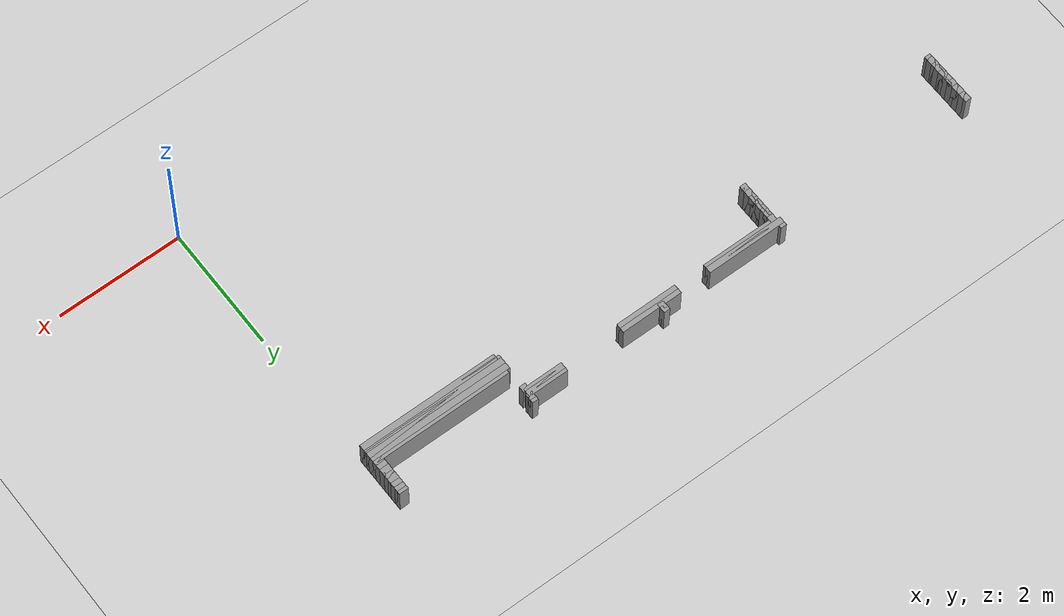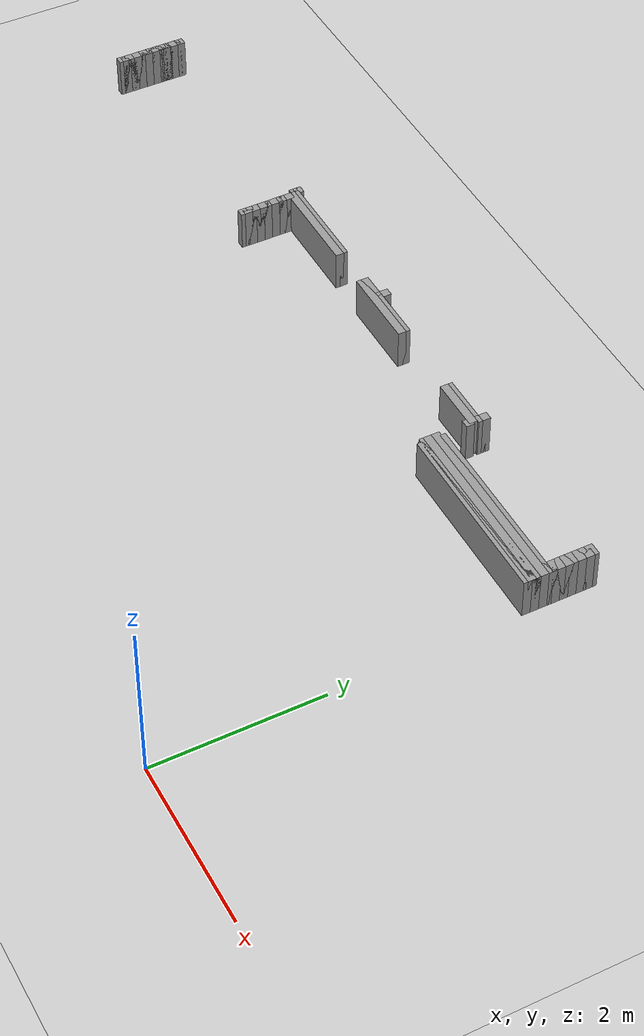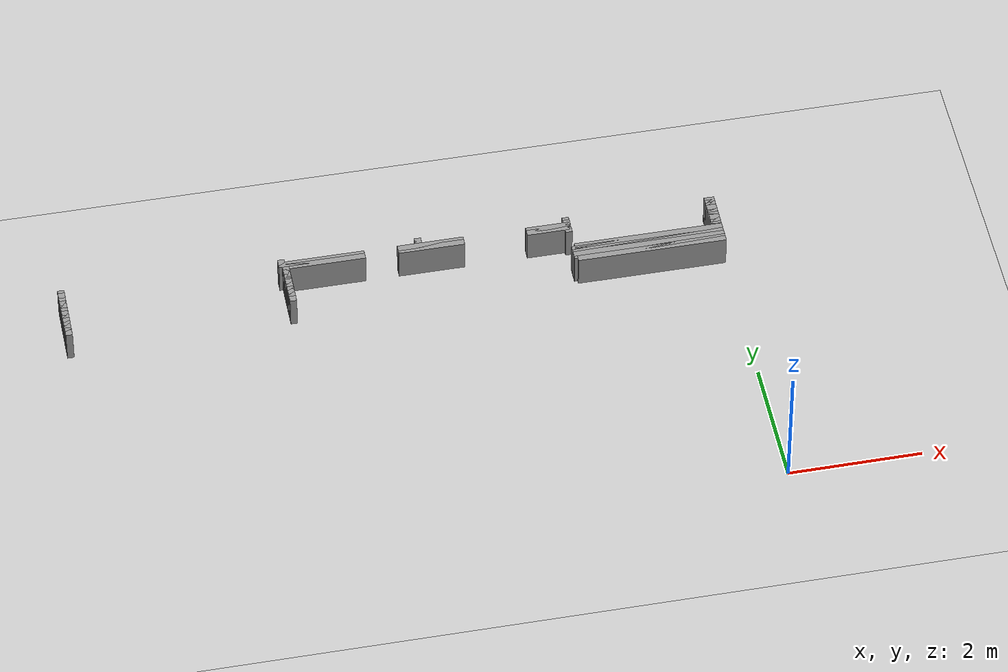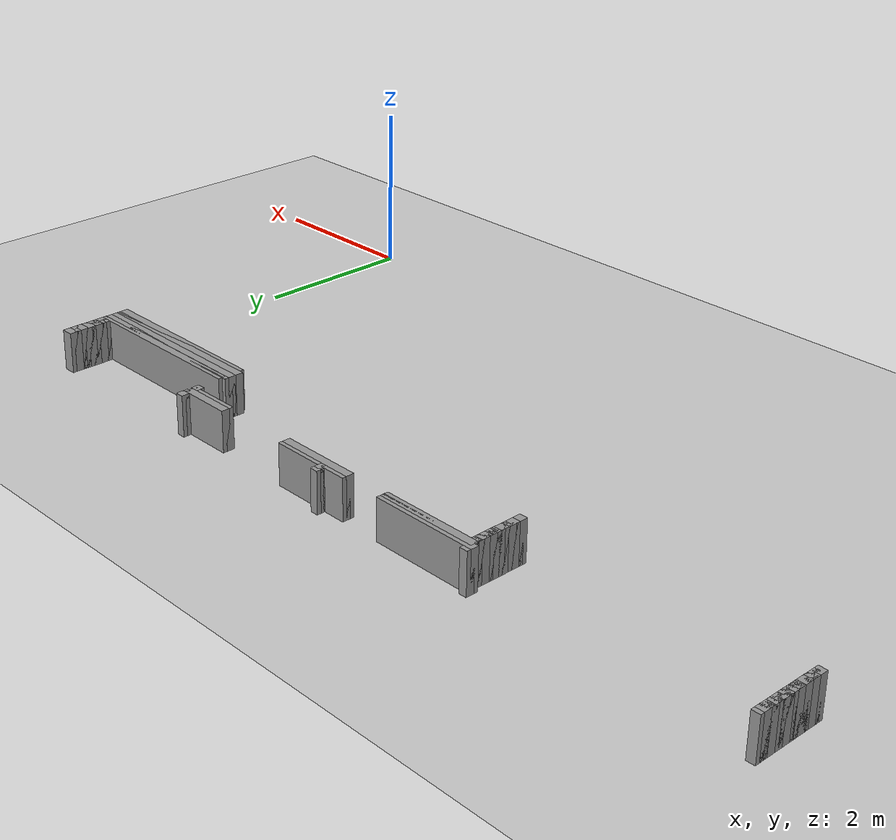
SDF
<sdf version="1.6">
 <world name="GridMap">
  <include><uri>model://sun</uri></include>
  <include><uri>model://ground_plane</uri></include>
  <model name="GridMap">
   <link name="Wall_(198.0,85.0)">
    <collision name="Wall_(198.0,85.0)_Collision">
     <geometry><box><size>0.1 0.1 0.5</size></box></geometry>
     <pose>-9.9 4.25 0.25 0 -0 0</pose>
    </collision>
    <inertial>
     <mass>0.5</mass>
     <pose>0 0.01 0 0 0 0</pose>
     <inertia><ixx>0.004</ixx><ixy>0.001</ixy><ixz>0</ixz><iyy>0.006</iyy><iyz>0</iyz><izz>0.007</izz></inertia>
    </inertial>
    <visual name="Wall_(198.0,85.0)_Visual">
     <geometry><box><size>0.1 0.1 0.5</size></box></geometry>
     <pose>-9.9 4.25 0.25 0 -0 0</pose>
     <material>
      <script><uri>file://media/materials/scripts/gazebo.material</uri><name>Gazebo/Grey</name></script>
      <ambient>1 1 1 1</ambient>
     </material>
     <meta><layer>0</layer></meta>
    </visual>
   </link>
   <link name="Wall_(22.5,86.0)">
    <collision name="Wall_(22.5,86.0)_Collision">
     <geometry><box><size>2.25 0.1 0.5</size></box></geometry>
     <pose>-1.125 4.3 0.25 0 -0 0</pose>
    </collision>
    <inertial>
     <mass>0.5</mass>
     <pose>0 0.01 0 0 0 0</pose>
     <inertia><ixx>0.004</ixx><ixy>0.001</ixy><ixz>0</ixz><iyy>0.006</iyy><iyz>0</iyz><izz>0.007</izz></inertia>
    </inertial>
    <visual name="Wall_(22.5,86.0)_Visual">
     <geometry><box><size>2.25 0.1 0.5</size></box></geometry>
     <pose>-1.125 4.3 0.25 0 -0 0</pose>
     <material>
      <script><uri>file://media/materials/scripts/gazebo.material</uri><name>Gazebo/Grey</name></script>
      <ambient>1 1 1 1</ambient>
     </material>
     <meta><layer>0</layer></meta>
    </visual>
   </link>
   <link name="Wall_(131.0,86.0)">
    <collision name="Wall_(131.0,86.0)_Collision">
     <geometry><box><size>0.1 0.1 0.5</size></box></geometry>
     <pose>-6.550000000000001 4.3 0.25 0 -0 0</pose>
    </collision>
    <inertial>
     <mass>0.5</mass>
     <pose>0 0.01 0 0 0 0</pose>
     <inertia><ixx>0.004</ixx><ixy>0.001</ixy><ixz>0</ixz><iyy>0.006</iyy><iyz>0</iyz><izz>0.007</izz></inertia>
    </inertial>
    <visual name="Wall_(131.0,86.0)_Visual">
     <geometry><box><size>0.1 0.1 0.5</size></box></geometry>
     <pose>-6.550000000000001 4.3 0.25 0 -0 0</pose>
     <material>
      <script><uri>file://media/materials/scripts/gazebo.material</uri><name>Gazebo/Grey</name></script>
      <ambient>1 1 1 1</ambient>
     </material>
     <meta><layer>0</layer></meta>
    </visual>
   </link>
   <link name="Wall_(198.0,86.0)">
    <collision name="Wall_(198.0,86.0)_Collision">
     <geometry><box><size>0.1 0.1 0.5</size></box></geometry>
     <pose>-9.9 4.3 0.25 0 -0 0</pose>
    </collision>
    <inertial>
     <mass>0.5</mass>
     <pose>0 0.01 0 0 0 0</pose>
     <inertia><ixx>0.004</ixx><ixy>0.001</ixy><ixz>0</ixz><iyy>0.006</iyy><iyz>0</iyz><izz>0.007</izz></inertia>
    </inertial>
    <visual name="Wall_(198.0,86.0)_Visual">
     <geometry><box><size>0.1 0.1 0.5</size></box></geometry>
     <pose>-9.9 4.3 0.25 0 -0 0</pose>
     <material>
      <script><uri>file://media/materials/scripts/gazebo.material</uri><name>Gazebo/Grey</name></script>
      <ambient>1 1 1 1</ambient>
     </material>
     <meta><layer>0</layer></meta>
    </visual>
   </link>
   <link name="Wall_(23.0,87.0)">
    <collision name="Wall_(23.0,87.0)_Collision">
     <geometry><box><size>2.3000000000000003 0.1 0.5</size></box></geometry>
     <pose>-1.1500000000000001 4.3500000000000005 0.25 0 -0 0</pose>
    </collision>
    <inertial>
     <mass>0.5</mass>
     <pose>0 0.01 0 0 0 0</pose>
     <inertia><ixx>0.004</ixx><ixy>0.001</ixy><ixz>0</ixz><iyy>0.006</iyy><iyz>0</iyz><izz>0.007</izz></inertia>
    </inertial>
    <visual name="Wall_(23.0,87.0)_Visual">
     <geometry><box><size>2.3000000000000003 0.1 0.5</size></box></geometry>
     <pose>-1.1500000000000001 4.3500000000000005 0.25 0 -0 0</pose>
     <material>
      <script><uri>file://media/materials/scripts/gazebo.material</uri><name>Gazebo/Grey</name></script>
      <ambient>1 1 1 1</ambient>
     </material>
     <meta><layer>0</layer></meta>
    </visual>
   </link>
   <link name="Wall_(131.0,87.0)">
    <collision name="Wall_(131.0,87.0)_Collision">
     <geometry><box><size>0.1 0.1 0.5</size></box></geometry>
     <pose>-6.550000000000001 4.3500000000000005 0.25 0 -0 0</pose>
    </collision>
    <inertial>
     <mass>0.5</mass>
     <pose>0 0.01 0 0 0 0</pose>
     <inertia><ixx>0.004</ixx><ixy>0.001</ixy><ixz>0</ixz><iyy>0.006</iyy><iyz>0</iyz><izz>0.007</izz></inertia>
    </inertial>
    <visual name="Wall_(131.0,87.0)_Visual">
     <geometry><box><size>0.1 0.1 0.5</size></box></geometry>
     <pose>-6.550000000000001 4.3500000000000005 0.25 0 -0 0</pose>
     <material>
      <script><uri>file://media/materials/scripts/gazebo.material</uri><name>Gazebo/Grey</name></script>
      <ambient>1 1 1 1</ambient>
     </material>
     <meta><layer>0</layer></meta>
    </visual>
   </link>
   <link name="Wall_(198.0,87.0)">
    <collision name="Wall_(198.0,87.0)_Collision">
     <geometry><box><size>0.1 0.1 0.5</size></box></geometry>
     <pose>-9.9 4.3500000000000005 0.25 0 -0 0</pose>
    </collision>
    <inertial>
     <mass>0.5</mass>
     <pose>0 0.01 0 0 0 0</pose>
     <inertia><ixx>0.004</ixx><ixy>0.001</ixy><ixz>0</ixz><iyy>0.006</iyy><iyz>0</iyz><izz>0.007</izz></inertia>
    </inertial>
    <visual name="Wall_(198.0,87.0)_Visual">
     <geometry><box><size>0.1 0.1 0.5</size></box></geometry>
     <pose>-9.9 4.3500000000000005 0.25 0 -0 0</pose>
     <material>
      <script><uri>file://media/materials/scripts/gazebo.material</uri><name>Gazebo/Grey</name></script>
      <ambient>1 1 1 1</ambient>
     </material>
     <meta><layer>0</layer></meta>
    </visual>
   </link>
   <link name="Wall_(23.0,88.0)">
    <collision name="Wall_(23.0,88.0)_Collision">
     <geometry><box><size>2.3000000000000003 0.1 0.5</size></box></geometry>
     <pose>-1.1500000000000001 4.4 0.25 0 -0 0</pose>
    </collision>
    <inertial>
     <mass>0.5</mass>
     <pose>0 0.01 0 0 0 0</pose>
     <inertia><ixx>0.004</ixx><ixy>0.001</ixy><ixz>0</ixz><iyy>0.006</iyy><iyz>0</iyz><izz>0.007</izz></inertia>
    </inertial>
    <visual name="Wall_(23.0,88.0)_Visual">
     <geometry><box><size>2.3000000000000003 0.1 0.5</size></box></geometry>
     <pose>-1.1500000000000001 4.4 0.25 0 -0 0</pose>
     <material>
      <script><uri>file://media/materials/scripts/gazebo.material</uri><name>Gazebo/Grey</name></script>
      <ambient>1 1 1 1</ambient>
     </material>
     <meta><layer>0</layer></meta>
    </visual>
   </link>
   <link name="Wall_(131.0,88.0)">
    <collision name="Wall_(131.0,88.0)_Collision">
     <geometry><box><size>0.1 0.1 0.5</size></box></geometry>
     <pose>-6.550000000000001 4.4 0.25 0 -0 0</pose>
    </collision>
    <inertial>
     <mass>0.5</mass>
     <pose>0 0.01 0 0 0 0</pose>
     <inertia><ixx>0.004</ixx><ixy>0.001</ixy><ixz>0</ixz><iyy>0.006</iyy><iyz>0</iyz><izz>0.007</izz></inertia>
    </inertial>
    <visual name="Wall_(131.0,88.0)_Visual">
     <geometry><box><size>0.1 0.1 0.5</size></box></geometry>
     <pose>-6.550000000000001 4.4 0.25 0 -0 0</pose>
     <material>
      <script><uri>file://media/materials/scripts/gazebo.material</uri><name>Gazebo/Grey</name></script>
      <ambient>1 1 1 1</ambient>
     </material>
     <meta><layer>0</layer></meta>
    </visual>
   </link>
   <link name="Wall_(198.0,88.0)">
    <collision name="Wall_(198.0,88.0)_Collision">
     <geometry><box><size>0.1 0.1 0.5</size></box></geometry>
     <pose>-9.9 4.4 0.25 0 -0 0</pose>
    </collision>
    <inertial>
     <mass>0.5</mass>
     <pose>0 0.01 0 0 0 0</pose>
     <inertia><ixx>0.004</ixx><ixy>0.001</ixy><ixz>0</ixz><iyy>0.006</iyy><iyz>0</iyz><izz>0.007</izz></inertia>
    </inertial>
    <visual name="Wall_(198.0,88.0)_Visual">
     <geometry><box><size>0.1 0.1 0.5</size></box></geometry>
     <pose>-9.9 4.4 0.25 0 -0 0</pose>
     <material>
      <script><uri>file://media/materials/scripts/gazebo.material</uri><name>Gazebo/Grey</name></script>
      <ambient>1 1 1 1</ambient>
     </material>
     <meta><layer>0</layer></meta>
    </visual>
   </link>
   <link name="Wall_(23.0,89.0)">
    <collision name="Wall_(23.0,89.0)_Collision">
     <geometry><box><size>2.3000000000000003 0.1 0.5</size></box></geometry>
     <pose>-1.1500000000000001 4.45 0.25 0 -0 0</pose>
    </collision>
    <inertial>
     <mass>0.5</mass>
     <pose>0 0.01 0 0 0 0</pose>
     <inertia><ixx>0.004</ixx><ixy>0.001</ixy><ixz>0</ixz><iyy>0.006</iyy><iyz>0</iyz><izz>0.007</izz></inertia>
    </inertial>
    <visual name="Wall_(23.0,89.0)_Visual">
     <geometry><box><size>2.3000000000000003 0.1 0.5</size></box></geometry>
     <pose>-1.1500000000000001 4.45 0.25 0 -0 0</pose>
     <material>
      <script><uri>file://media/materials/scripts/gazebo.material</uri><name>Gazebo/Grey</name></script>
      <ambient>1 1 1 1</ambient>
     </material>
     <meta><layer>0</layer></meta>
    </visual>
   </link>
   <link name="Wall_(131.0,89.0)">
    <collision name="Wall_(131.0,89.0)_Collision">
     <geometry><box><size>0.1 0.1 0.5</size></box></geometry>
     <pose>-6.550000000000001 4.45 0.25 0 -0 0</pose>
    </collision>
    <inertial>
     <mass>0.5</mass>
     <pose>0 0.01 0 0 0 0</pose>
     <inertia><ixx>0.004</ixx><ixy>0.001</ixy><ixz>0</ixz><iyy>0.006</iyy><iyz>0</iyz><izz>0.007</izz></inertia>
    </inertial>
    <visual name="Wall_(131.0,89.0)_Visual">
     <geometry><box><size>0.1 0.1 0.5</size></box></geometry>
     <pose>-6.550000000000001 4.45 0.25 0 -0 0</pose>
     <material>
      <script><uri>file://media/materials/scripts/gazebo.material</uri><name>Gazebo/Grey</name></script>
      <ambient>1 1 1 1</ambient>
     </material>
     <meta><layer>0</layer></meta>
    </visual>
   </link>
   <link name="Wall_(198.0,89.0)">
    <collision name="Wall_(198.0,89.0)_Collision">
     <geometry><box><size>0.1 0.1 0.5</size></box></geometry>
     <pose>-9.9 4.45 0.25 0 -0 0</pose>
    </collision>
    <inertial>
     <mass>0.5</mass>
     <pose>0 0.01 0 0 0 0</pose>
     <inertia><ixx>0.004</ixx><ixy>0.001</ixy><ixz>0</ixz><iyy>0.006</iyy><iyz>0</iyz><izz>0.007</izz></inertia>
    </inertial>
    <visual name="Wall_(198.0,89.0)_Visual">
     <geometry><box><size>0.1 0.1 0.5</size></box></geometry>
     <pose>-9.9 4.45 0.25 0 -0 0</pose>
     <material>
      <script><uri>file://media/materials/scripts/gazebo.material</uri><name>Gazebo/Grey</name></script>
      <ambient>1 1 1 1</ambient>
     </material>
     <meta><layer>0</layer></meta>
    </visual>
   </link>
   <link name="Wall_(23.0,90.0)">
    <collision name="Wall_(23.0,90.0)_Collision">
     <geometry><box><size>2.3000000000000003 0.1 0.5</size></box></geometry>
     <pose>-1.1500000000000001 4.5 0.25 0 -0 0</pose>
    </collision>
    <inertial>
     <mass>0.5</mass>
     <pose>0 0.01 0 0 0 0</pose>
     <inertia><ixx>0.004</ixx><ixy>0.001</ixy><ixz>0</ixz><iyy>0.006</iyy><iyz>0</iyz><izz>0.007</izz></inertia>
    </inertial>
    <visual name="Wall_(23.0,90.0)_Visual">
     <geometry><box><size>2.3000000000000003 0.1 0.5</size></box></geometry>
     <pose>-1.1500000000000001 4.5 0.25 0 -0 0</pose>
     <material>
      <script><uri>file://media/materials/scripts/gazebo.material</uri><name>Gazebo/Grey</name></script>
      <ambient>1 1 1 1</ambient>
     </material>
     <meta><layer>0</layer></meta>
    </visual>
   </link>
   <link name="Wall_(131.0,90.0)">
    <collision name="Wall_(131.0,90.0)_Collision">
     <geometry><box><size>0.1 0.1 0.5</size></box></geometry>
     <pose>-6.550000000000001 4.5 0.25 0 -0 0</pose>
    </collision>
    <inertial>
     <mass>0.5</mass>
     <pose>0 0.01 0 0 0 0</pose>
     <inertia><ixx>0.004</ixx><ixy>0.001</ixy><ixz>0</ixz><iyy>0.006</iyy><iyz>0</iyz><izz>0.007</izz></inertia>
    </inertial>
    <visual name="Wall_(131.0,90.0)_Visual">
     <geometry><box><size>0.1 0.1 0.5</size></box></geometry>
     <pose>-6.550000000000001 4.5 0.25 0 -0 0</pose>
     <material>
      <script><uri>file://media/materials/scripts/gazebo.material</uri><name>Gazebo/Grey</name></script>
      <ambient>1 1 1 1</ambient>
     </material>
     <meta><layer>0</layer></meta>
    </visual>
   </link>
   <link name="Wall_(198.0,90.0)">
    <collision name="Wall_(198.0,90.0)_Collision">
     <geometry><box><size>0.1 0.1 0.5</size></box></geometry>
     <pose>-9.9 4.5 0.25 0 -0 0</pose>
    </collision>
    <inertial>
     <mass>0.5</mass>
     <pose>0 0.01 0 0 0 0</pose>
     <inertia><ixx>0.004</ixx><ixy>0.001</ixy><ixz>0</ixz><iyy>0.006</iyy><iyz>0</iyz><izz>0.007</izz></inertia>
    </inertial>
    <visual name="Wall_(198.0,90.0)_Visual">
     <geometry><box><size>0.1 0.1 0.5</size></box></geometry>
     <pose>-9.9 4.5 0.25 0 -0 0</pose>
     <material>
      <script><uri>file://media/materials/scripts/gazebo.material</uri><name>Gazebo/Grey</name></script>
      <ambient>1 1 1 1</ambient>
     </material>
     <meta><layer>0</layer></meta>
    </visual>
   </link>
   <link name="Wall_(22.5,91.0)">
    <collision name="Wall_(22.5,91.0)_Collision">
     <geometry><box><size>2.25 0.1 0.5</size></box></geometry>
     <pose>-1.125 4.55 0.25 0 -0 0</pose>
    </collision>
    <inertial>
     <mass>0.5</mass>
     <pose>0 0.01 0 0 0 0</pose>
     <inertia><ixx>0.004</ixx><ixy>0.001</ixy><ixz>0</ixz><iyy>0.006</iyy><iyz>0</iyz><izz>0.007</izz></inertia>
    </inertial>
    <visual name="Wall_(22.5,91.0)_Visual">
     <geometry><box><size>2.25 0.1 0.5</size></box></geometry>
     <pose>-1.125 4.55 0.25 0 -0 0</pose>
     <material>
      <script><uri>file://media/materials/scripts/gazebo.material</uri><name>Gazebo/Grey</name></script>
      <ambient>1 1 1 1</ambient>
     </material>
     <meta><layer>0</layer></meta>
    </visual>
   </link>
   <link name="Wall_(131.0,91.0)">
    <collision name="Wall_(131.0,91.0)_Collision">
     <geometry><box><size>0.1 0.1 0.5</size></box></geometry>
     <pose>-6.550000000000001 4.55 0.25 0 -0 0</pose>
    </collision>
    <inertial>
     <mass>0.5</mass>
     <pose>0 0.01 0 0 0 0</pose>
     <inertia><ixx>0.004</ixx><ixy>0.001</ixy><ixz>0</ixz><iyy>0.006</iyy><iyz>0</iyz><izz>0.007</izz></inertia>
    </inertial>
    <visual name="Wall_(131.0,91.0)_Visual">
     <geometry><box><size>0.1 0.1 0.5</size></box></geometry>
     <pose>-6.550000000000001 4.55 0.25 0 -0 0</pose>
     <material>
      <script><uri>file://media/materials/scripts/gazebo.material</uri><name>Gazebo/Grey</name></script>
      <ambient>1 1 1 1</ambient>
     </material>
     <meta><layer>0</layer></meta>
    </visual>
   </link>
   <link name="Wall_(198.0,91.0)">
    <collision name="Wall_(198.0,91.0)_Collision">
     <geometry><box><size>0.1 0.1 0.5</size></box></geometry>
     <pose>-9.9 4.55 0.25 0 -0 0</pose>
    </collision>
    <inertial>
     <mass>0.5</mass>
     <pose>0 0.01 0 0 0 0</pose>
     <inertia><ixx>0.004</ixx><ixy>0.001</ixy><ixz>0</ixz><iyy>0.006</iyy><iyz>0</iyz><izz>0.007</izz></inertia>
    </inertial>
    <visual name="Wall_(198.0,91.0)_Visual">
     <geometry><box><size>0.1 0.1 0.5</size></box></geometry>
     <pose>-9.9 4.55 0.25 0 -0 0</pose>
     <material>
      <script><uri>file://media/materials/scripts/gazebo.material</uri><name>Gazebo/Grey</name></script>
      <ambient>1 1 1 1</ambient>
     </material>
     <meta><layer>0</layer></meta>
    </visual>
   </link>
   <link name="Wall_(1.5,92.0)">
    <collision name="Wall_(1.5,92.0)_Collision">
     <geometry><box><size>0.15000000000000002 0.1 0.5</size></box></geometry>
     <pose>-0.07500000000000001 4.6000000000000005 0.25 0 -0 0</pose>
    </collision>
    <inertial>
     <mass>0.5</mass>
     <pose>0 0.01 0 0 0 0</pose>
     <inertia><ixx>0.004</ixx><ixy>0.001</ixy><ixz>0</ixz><iyy>0.006</iyy><iyz>0</iyz><izz>0.007</izz></inertia>
    </inertial>
    <visual name="Wall_(1.5,92.0)_Visual">
     <geometry><box><size>0.15000000000000002 0.1 0.5</size></box></geometry>
     <pose>-0.07500000000000001 4.6000000000000005 0.25 0 -0 0</pose>
     <material>
      <script><uri>file://media/materials/scripts/gazebo.material</uri><name>Gazebo/Grey</name></script>
      <ambient>1 1 1 1</ambient>
     </material>
     <meta><layer>0</layer></meta>
    </visual>
   </link>
   <link name="Wall_(131.0,92.0)">
    <collision name="Wall_(131.0,92.0)_Collision">
     <geometry><box><size>0.1 0.1 0.5</size></box></geometry>
     <pose>-6.550000000000001 4.6000000000000005 0.25 0 -0 0</pose>
    </collision>
    <inertial>
     <mass>0.5</mass>
     <pose>0 0.01 0 0 0 0</pose>
     <inertia><ixx>0.004</ixx><ixy>0.001</ixy><ixz>0</ixz><iyy>0.006</iyy><iyz>0</iyz><izz>0.007</izz></inertia>
    </inertial>
    <visual name="Wall_(131.0,92.0)_Visual">
     <geometry><box><size>0.1 0.1 0.5</size></box></geometry>
     <pose>-6.550000000000001 4.6000000000000005 0.25 0 -0 0</pose>
     <material>
      <script><uri>file://media/materials/scripts/gazebo.material</uri><name>Gazebo/Grey</name></script>
      <ambient>1 1 1 1</ambient>
     </material>
     <meta><layer>0</layer></meta>
    </visual>
   </link>
   <link name="Wall_(198.0,92.0)">
    <collision name="Wall_(198.0,92.0)_Collision">
     <geometry><box><size>0.1 0.1 0.5</size></box></geometry>
     <pose>-9.9 4.6000000000000005 0.25 0 -0 0</pose>
    </collision>
    <inertial>
     <mass>0.5</mass>
     <pose>0 0.01 0 0 0 0</pose>
     <inertia><ixx>0.004</ixx><ixy>0.001</ixy><ixz>0</ixz><iyy>0.006</iyy><iyz>0</iyz><izz>0.007</izz></inertia>
    </inertial>
    <visual name="Wall_(198.0,92.0)_Visual">
     <geometry><box><size>0.1 0.1 0.5</size></box></geometry>
     <pose>-9.9 4.6000000000000005 0.25 0 -0 0</pose>
     <material>
      <script><uri>file://media/materials/scripts/gazebo.material</uri><name>Gazebo/Grey</name></script>
      <ambient>1 1 1 1</ambient>
     </material>
     <meta><layer>0</layer></meta>
    </visual>
   </link>
   <link name="Wall_(1.5,93.0)">
    <collision name="Wall_(1.5,93.0)_Collision">
     <geometry><box><size>0.15000000000000002 0.1 0.5</size></box></geometry>
     <pose>-0.07500000000000001 4.65 0.25 0 -0 0</pose>
    </collision>
    <inertial>
     <mass>0.5</mass>
     <pose>0 0.01 0 0 0 0</pose>
     <inertia><ixx>0.004</ixx><ixy>0.001</ixy><ixz>0</ixz><iyy>0.006</iyy><iyz>0</iyz><izz>0.007</izz></inertia>
    </inertial>
    <visual name="Wall_(1.5,93.0)_Visual">
     <geometry><box><size>0.15000000000000002 0.1 0.5</size></box></geometry>
     <pose>-0.07500000000000001 4.65 0.25 0 -0 0</pose>
     <material>
      <script><uri>file://media/materials/scripts/gazebo.material</uri><name>Gazebo/Grey</name></script>
      <ambient>1 1 1 1</ambient>
     </material>
     <meta><layer>0</layer></meta>
    </visual>
   </link>
   <link name="Wall_(131.0,93.0)">
    <collision name="Wall_(131.0,93.0)_Collision">
     <geometry><box><size>0.1 0.1 0.5</size></box></geometry>
     <pose>-6.550000000000001 4.65 0.25 0 -0 0</pose>
    </collision>
    <inertial>
     <mass>0.5</mass>
     <pose>0 0.01 0 0 0 0</pose>
     <inertia><ixx>0.004</ixx><ixy>0.001</ixy><ixz>0</ixz><iyy>0.006</iyy><iyz>0</iyz><izz>0.007</izz></inertia>
    </inertial>
    <visual name="Wall_(131.0,93.0)_Visual">
     <geometry><box><size>0.1 0.1 0.5</size></box></geometry>
     <pose>-6.550000000000001 4.65 0.25 0 -0 0</pose>
     <material>
      <script><uri>file://media/materials/scripts/gazebo.material</uri><name>Gazebo/Grey</name></script>
      <ambient>1 1 1 1</ambient>
     </material>
     <meta><layer>0</layer></meta>
    </visual>
   </link>
   <link name="Wall_(198.0,93.0)">
    <collision name="Wall_(198.0,93.0)_Collision">
     <geometry><box><size>0.1 0.1 0.5</size></box></geometry>
     <pose>-9.9 4.65 0.25 0 -0 0</pose>
    </collision>
    <inertial>
     <mass>0.5</mass>
     <pose>0 0.01 0 0 0 0</pose>
     <inertia><ixx>0.004</ixx><ixy>0.001</ixy><ixz>0</ixz><iyy>0.006</iyy><iyz>0</iyz><izz>0.007</izz></inertia>
    </inertial>
    <visual name="Wall_(198.0,93.0)_Visual">
     <geometry><box><size>0.1 0.1 0.5</size></box></geometry>
     <pose>-9.9 4.65 0.25 0 -0 0</pose>
     <material>
      <script><uri>file://media/materials/scripts/gazebo.material</uri><name>Gazebo/Grey</name></script>
      <ambient>1 1 1 1</ambient>
     </material>
     <meta><layer>0</layer></meta>
    </visual>
   </link>
   <link name="Wall_(1.5,94.0)">
    <collision name="Wall_(1.5,94.0)_Collision">
     <geometry><box><size>0.15000000000000002 0.1 0.5</size></box></geometry>
     <pose>-0.07500000000000001 4.7 0.25 0 -0 0</pose>
    </collision>
    <inertial>
     <mass>0.5</mass>
     <pose>0 0.01 0 0 0 0</pose>
     <inertia><ixx>0.004</ixx><ixy>0.001</ixy><ixz>0</ixz><iyy>0.006</iyy><iyz>0</iyz><izz>0.007</izz></inertia>
    </inertial>
    <visual name="Wall_(1.5,94.0)_Visual">
     <geometry><box><size>0.15000000000000002 0.1 0.5</size></box></geometry>
     <pose>-0.07500000000000001 4.7 0.25 0 -0 0</pose>
     <material>
      <script><uri>file://media/materials/scripts/gazebo.material</uri><name>Gazebo/Grey</name></script>
      <ambient>1 1 1 1</ambient>
     </material>
     <meta><layer>0</layer></meta>
    </visual>
   </link>
   <link name="Wall_(131.0,94.0)">
    <collision name="Wall_(131.0,94.0)_Collision">
     <geometry><box><size>0.1 0.1 0.5</size></box></geometry>
     <pose>-6.550000000000001 4.7 0.25 0 -0 0</pose>
    </collision>
    <inertial>
     <mass>0.5</mass>
     <pose>0 0.01 0 0 0 0</pose>
     <inertia><ixx>0.004</ixx><ixy>0.001</ixy><ixz>0</ixz><iyy>0.006</iyy><iyz>0</iyz><izz>0.007</izz></inertia>
    </inertial>
    <visual name="Wall_(131.0,94.0)_Visual">
     <geometry><box><size>0.1 0.1 0.5</size></box></geometry>
     <pose>-6.550000000000001 4.7 0.25 0 -0 0</pose>
     <material>
      <script><uri>file://media/materials/scripts/gazebo.material</uri><name>Gazebo/Grey</name></script>
      <ambient>1 1 1 1</ambient>
     </material>
     <meta><layer>0</layer></meta>
    </visual>
   </link>
   <link name="Wall_(198.0,94.0)">
    <collision name="Wall_(198.0,94.0)_Collision">
     <geometry><box><size>0.1 0.1 0.5</size></box></geometry>
     <pose>-9.9 4.7 0.25 0 -0 0</pose>
    </collision>
    <inertial>
     <mass>0.5</mass>
     <pose>0 0.01 0 0 0 0</pose>
     <inertia><ixx>0.004</ixx><ixy>0.001</ixy><ixz>0</ixz><iyy>0.006</iyy><iyz>0</iyz><izz>0.007</izz></inertia>
    </inertial>
    <visual name="Wall_(198.0,94.0)_Visual">
     <geometry><box><size>0.1 0.1 0.5</size></box></geometry>
     <pose>-9.9 4.7 0.25 0 -0 0</pose>
     <material>
      <script><uri>file://media/materials/scripts/gazebo.material</uri><name>Gazebo/Grey</name></script>
      <ambient>1 1 1 1</ambient>
     </material>
     <meta><layer>0</layer></meta>
    </visual>
   </link>
   <link name="Wall_(1.5,95.0)">
    <collision name="Wall_(1.5,95.0)_Collision">
     <geometry><box><size>0.15000000000000002 0.1 0.5</size></box></geometry>
     <pose>-0.07500000000000001 4.75 0.25 0 -0 0</pose>
    </collision>
    <inertial>
     <mass>0.5</mass>
     <pose>0 0.01 0 0 0 0</pose>
     <inertia><ixx>0.004</ixx><ixy>0.001</ixy><ixz>0</ixz><iyy>0.006</iyy><iyz>0</iyz><izz>0.007</izz></inertia>
    </inertial>
    <visual name="Wall_(1.5,95.0)_Visual">
     <geometry><box><size>0.15000000000000002 0.1 0.5</size></box></geometry>
     <pose>-0.07500000000000001 4.75 0.25 0 -0 0</pose>
     <material>
      <script><uri>file://media/materials/scripts/gazebo.material</uri><name>Gazebo/Grey</name></script>
      <ambient>1 1 1 1</ambient>
     </material>
     <meta><layer>0</layer></meta>
    </visual>
   </link>
   <link name="Wall_(131.0,95.0)">
    <collision name="Wall_(131.0,95.0)_Collision">
     <geometry><box><size>0.1 0.1 0.5</size></box></geometry>
     <pose>-6.550000000000001 4.75 0.25 0 -0 0</pose>
    </collision>
    <inertial>
     <mass>0.5</mass>
     <pose>0 0.01 0 0 0 0</pose>
     <inertia><ixx>0.004</ixx><ixy>0.001</ixy><ixz>0</ixz><iyy>0.006</iyy><iyz>0</iyz><izz>0.007</izz></inertia>
    </inertial>
    <visual name="Wall_(131.0,95.0)_Visual">
     <geometry><box><size>0.1 0.1 0.5</size></box></geometry>
     <pose>-6.550000000000001 4.75 0.25 0 -0 0</pose>
     <material>
      <script><uri>file://media/materials/scripts/gazebo.material</uri><name>Gazebo/Grey</name></script>
      <ambient>1 1 1 1</ambient>
     </material>
     <meta><layer>0</layer></meta>
    </visual>
   </link>
   <link name="Wall_(198.0,95.0)">
    <collision name="Wall_(198.0,95.0)_Collision">
     <geometry><box><size>0.1 0.1 0.5</size></box></geometry>
     <pose>-9.9 4.75 0.25 0 -0 0</pose>
    </collision>
    <inertial>
     <mass>0.5</mass>
     <pose>0 0.01 0 0 0 0</pose>
     <inertia><ixx>0.004</ixx><ixy>0.001</ixy><ixz>0</ixz><iyy>0.006</iyy><iyz>0</iyz><izz>0.007</izz></inertia>
    </inertial>
    <visual name="Wall_(198.0,95.0)_Visual">
     <geometry><box><size>0.1 0.1 0.5</size></box></geometry>
     <pose>-9.9 4.75 0.25 0 -0 0</pose>
     <material>
      <script><uri>file://media/materials/scripts/gazebo.material</uri><name>Gazebo/Grey</name></script>
      <ambient>1 1 1 1</ambient>
     </material>
     <meta><layer>0</layer></meta>
    </visual>
   </link>
   <link name="Wall_(1.5,96.0)">
    <collision name="Wall_(1.5,96.0)_Collision">
     <geometry><box><size>0.15000000000000002 0.1 0.5</size></box></geometry>
     <pose>-0.07500000000000001 4.800000000000001 0.25 0 -0 0</pose>
    </collision>
    <inertial>
     <mass>0.5</mass>
     <pose>0 0.01 0 0 0 0</pose>
     <inertia><ixx>0.004</ixx><ixy>0.001</ixy><ixz>0</ixz><iyy>0.006</iyy><iyz>0</iyz><izz>0.007</izz></inertia>
    </inertial>
    <visual name="Wall_(1.5,96.0)_Visual">
     <geometry><box><size>0.15000000000000002 0.1 0.5</size></box></geometry>
     <pose>-0.07500000000000001 4.800000000000001 0.25 0 -0 0</pose>
     <material>
      <script><uri>file://media/materials/scripts/gazebo.material</uri><name>Gazebo/Grey</name></script>
      <ambient>1 1 1 1</ambient>
     </material>
     <meta><layer>0</layer></meta>
    </visual>
   </link>
   <link name="Wall_(131.0,96.0)">
    <collision name="Wall_(131.0,96.0)_Collision">
     <geometry><box><size>0.1 0.1 0.5</size></box></geometry>
     <pose>-6.550000000000001 4.800000000000001 0.25 0 -0 0</pose>
    </collision>
    <inertial>
     <mass>0.5</mass>
     <pose>0 0.01 0 0 0 0</pose>
     <inertia><ixx>0.004</ixx><ixy>0.001</ixy><ixz>0</ixz><iyy>0.006</iyy><iyz>0</iyz><izz>0.007</izz></inertia>
    </inertial>
    <visual name="Wall_(131.0,96.0)_Visual">
     <geometry><box><size>0.1 0.1 0.5</size></box></geometry>
     <pose>-6.550000000000001 4.800000000000001 0.25 0 -0 0</pose>
     <material>
      <script><uri>file://media/materials/scripts/gazebo.material</uri><name>Gazebo/Grey</name></script>
      <ambient>1 1 1 1</ambient>
     </material>
     <meta><layer>0</layer></meta>
    </visual>
   </link>
   <link name="Wall_(198.0,96.0)">
    <collision name="Wall_(198.0,96.0)_Collision">
     <geometry><box><size>0.1 0.1 0.5</size></box></geometry>
     <pose>-9.9 4.800000000000001 0.25 0 -0 0</pose>
    </collision>
    <inertial>
     <mass>0.5</mass>
     <pose>0 0.01 0 0 0 0</pose>
     <inertia><ixx>0.004</ixx><ixy>0.001</ixy><ixz>0</ixz><iyy>0.006</iyy><iyz>0</iyz><izz>0.007</izz></inertia>
    </inertial>
    <visual name="Wall_(198.0,96.0)_Visual">
     <geometry><box><size>0.1 0.1 0.5</size></box></geometry>
     <pose>-9.9 4.800000000000001 0.25 0 -0 0</pose>
     <material>
      <script><uri>file://media/materials/scripts/gazebo.material</uri><name>Gazebo/Grey</name></script>
      <ambient>1 1 1 1</ambient>
     </material>
     <meta><layer>0</layer></meta>
    </visual>
   </link>
   <link name="Wall_(1.5,97.0)">
    <collision name="Wall_(1.5,97.0)_Collision">
     <geometry><box><size>0.15000000000000002 0.1 0.5</size></box></geometry>
     <pose>-0.07500000000000001 4.8500000000000005 0.25 0 -0 0</pose>
    </collision>
    <inertial>
     <mass>0.5</mass>
     <pose>0 0.01 0 0 0 0</pose>
     <inertia><ixx>0.004</ixx><ixy>0.001</ixy><ixz>0</ixz><iyy>0.006</iyy><iyz>0</iyz><izz>0.007</izz></inertia>
    </inertial>
    <visual name="Wall_(1.5,97.0)_Visual">
     <geometry><box><size>0.15000000000000002 0.1 0.5</size></box></geometry>
     <pose>-0.07500000000000001 4.8500000000000005 0.25 0 -0 0</pose>
     <material>
      <script><uri>file://media/materials/scripts/gazebo.material</uri><name>Gazebo/Grey</name></script>
      <ambient>1 1 1 1</ambient>
     </material>
     <meta><layer>0</layer></meta>
    </visual>
   </link>
   <link name="Wall_(131.0,97.0)">
    <collision name="Wall_(131.0,97.0)_Collision">
     <geometry><box><size>0.1 0.1 0.5</size></box></geometry>
     <pose>-6.550000000000001 4.8500000000000005 0.25 0 -0 0</pose>
    </collision>
    <inertial>
     <mass>0.5</mass>
     <pose>0 0.01 0 0 0 0</pose>
     <inertia><ixx>0.004</ixx><ixy>0.001</ixy><ixz>0</ixz><iyy>0.006</iyy><iyz>0</iyz><izz>0.007</izz></inertia>
    </inertial>
    <visual name="Wall_(131.0,97.0)_Visual">
     <geometry><box><size>0.1 0.1 0.5</size></box></geometry>
     <pose>-6.550000000000001 4.8500000000000005 0.25 0 -0 0</pose>
     <material>
      <script><uri>file://media/materials/scripts/gazebo.material</uri><name>Gazebo/Grey</name></script>
      <ambient>1 1 1 1</ambient>
     </material>
     <meta><layer>0</layer></meta>
    </visual>
   </link>
   <link name="Wall_(198.0,97.0)">
    <collision name="Wall_(198.0,97.0)_Collision">
     <geometry><box><size>0.1 0.1 0.5</size></box></geometry>
     <pose>-9.9 4.8500000000000005 0.25 0 -0 0</pose>
    </collision>
    <inertial>
     <mass>0.5</mass>
     <pose>0 0.01 0 0 0 0</pose>
     <inertia><ixx>0.004</ixx><ixy>0.001</ixy><ixz>0</ixz><iyy>0.006</iyy><iyz>0</iyz><izz>0.007</izz></inertia>
    </inertial>
    <visual name="Wall_(198.0,97.0)_Visual">
     <geometry><box><size>0.1 0.1 0.5</size></box></geometry>
     <pose>-9.9 4.8500000000000005 0.25 0 -0 0</pose>
     <material>
      <script><uri>file://media/materials/scripts/gazebo.material</uri><name>Gazebo/Grey</name></script>
      <ambient>1 1 1 1</ambient>
     </material>
     <meta><layer>0</layer></meta>
    </visual>
   </link>
   <link name="Wall_(1.5,98.0)">
    <collision name="Wall_(1.5,98.0)_Collision">
     <geometry><box><size>0.15000000000000002 0.1 0.5</size></box></geometry>
     <pose>-0.07500000000000001 4.9 0.25 0 -0 0</pose>
    </collision>
    <inertial>
     <mass>0.5</mass>
     <pose>0 0.01 0 0 0 0</pose>
     <inertia><ixx>0.004</ixx><ixy>0.001</ixy><ixz>0</ixz><iyy>0.006</iyy><iyz>0</iyz><izz>0.007</izz></inertia>
    </inertial>
    <visual name="Wall_(1.5,98.0)_Visual">
     <geometry><box><size>0.15000000000000002 0.1 0.5</size></box></geometry>
     <pose>-0.07500000000000001 4.9 0.25 0 -0 0</pose>
     <material>
      <script><uri>file://media/materials/scripts/gazebo.material</uri><name>Gazebo/Grey</name></script>
      <ambient>1 1 1 1</ambient>
     </material>
     <meta><layer>0</layer></meta>
    </visual>
   </link>
   <link name="Wall_(45.5,98.0)">
    <collision name="Wall_(45.5,98.0)_Collision">
     <geometry><box><size>0.1 0.1 0.5</size></box></geometry>
     <pose>-2.275 4.9 0.25 0 -0 0</pose>
    </collision>
    <inertial>
     <mass>0.5</mass>
     <pose>0 0.01 0 0 0 0</pose>
     <inertia><ixx>0.004</ixx><ixy>0.001</ixy><ixz>0</ixz><iyy>0.006</iyy><iyz>0</iyz><izz>0.007</izz></inertia>
    </inertial>
    <visual name="Wall_(45.5,98.0)_Visual">
     <geometry><box><size>0.1 0.1 0.5</size></box></geometry>
     <pose>-2.275 4.9 0.25 0 -0 0</pose>
     <material>
      <script><uri>file://media/materials/scripts/gazebo.material</uri><name>Gazebo/Grey</name></script>
      <ambient>1 1 1 1</ambient>
     </material>
     <meta><layer>0</layer></meta>
    </visual>
   </link>
   <link name="Wall_(131.0,98.0)">
    <collision name="Wall_(131.0,98.0)_Collision">
     <geometry><box><size>0.1 0.1 0.5</size></box></geometry>
     <pose>-6.550000000000001 4.9 0.25 0 -0 0</pose>
    </collision>
    <inertial>
     <mass>0.5</mass>
     <pose>0 0.01 0 0 0 0</pose>
     <inertia><ixx>0.004</ixx><ixy>0.001</ixy><ixz>0</ixz><iyy>0.006</iyy><iyz>0</iyz><izz>0.007</izz></inertia>
    </inertial>
    <visual name="Wall_(131.0,98.0)_Visual">
     <geometry><box><size>0.1 0.1 0.5</size></box></geometry>
     <pose>-6.550000000000001 4.9 0.25 0 -0 0</pose>
     <material>
      <script><uri>file://media/materials/scripts/gazebo.material</uri><name>Gazebo/Grey</name></script>
      <ambient>1 1 1 1</ambient>
     </material>
     <meta><layer>0</layer></meta>
    </visual>
   </link>
   <link name="Wall_(198.0,98.0)">
    <collision name="Wall_(198.0,98.0)_Collision">
     <geometry><box><size>0.1 0.1 0.5</size></box></geometry>
     <pose>-9.9 4.9 0.25 0 -0 0</pose>
    </collision>
    <inertial>
     <mass>0.5</mass>
     <pose>0 0.01 0 0 0 0</pose>
     <inertia><ixx>0.004</ixx><ixy>0.001</ixy><ixz>0</ixz><iyy>0.006</iyy><iyz>0</iyz><izz>0.007</izz></inertia>
    </inertial>
    <visual name="Wall_(198.0,98.0)_Visual">
     <geometry><box><size>0.1 0.1 0.5</size></box></geometry>
     <pose>-9.9 4.9 0.25 0 -0 0</pose>
     <material>
      <script><uri>file://media/materials/scripts/gazebo.material</uri><name>Gazebo/Grey</name></script>
      <ambient>1 1 1 1</ambient>
     </material>
     <meta><layer>0</layer></meta>
    </visual>
   </link>
   <link name="Wall_(1.5,99.0)">
    <collision name="Wall_(1.5,99.0)_Collision">
     <geometry><box><size>0.15000000000000002 0.1 0.5</size></box></geometry>
     <pose>-0.07500000000000001 4.95 0.25 0 -0 0</pose>
    </collision>
    <inertial>
     <mass>0.5</mass>
     <pose>0 0.01 0 0 0 0</pose>
     <inertia><ixx>0.004</ixx><ixy>0.001</ixy><ixz>0</ixz><iyy>0.006</iyy><iyz>0</iyz><izz>0.007</izz></inertia>
    </inertial>
    <visual name="Wall_(1.5,99.0)_Visual">
     <geometry><box><size>0.15000000000000002 0.1 0.5</size></box></geometry>
     <pose>-0.07500000000000001 4.95 0.25 0 -0 0</pose>
     <material>
      <script><uri>file://media/materials/scripts/gazebo.material</uri><name>Gazebo/Grey</name></script>
      <ambient>1 1 1 1</ambient>
     </material>
     <meta><layer>0</layer></meta>
    </visual>
   </link>
   <link name="Wall_(51.5,99.0)">
    <collision name="Wall_(51.5,99.0)_Collision">
     <geometry><box><size>0.65 0.1 0.5</size></box></geometry>
     <pose>-2.575 4.95 0.25 0 -0 0</pose>
    </collision>
    <inertial>
     <mass>0.5</mass>
     <pose>0 0.01 0 0 0 0</pose>
     <inertia><ixx>0.004</ixx><ixy>0.001</ixy><ixz>0</ixz><iyy>0.006</iyy><iyz>0</iyz><izz>0.007</izz></inertia>
    </inertial>
    <visual name="Wall_(51.5,99.0)_Visual">
     <geometry><box><size>0.65 0.1 0.5</size></box></geometry>
     <pose>-2.575 4.95 0.25 0 -0 0</pose>
     <material>
      <script><uri>file://media/materials/scripts/gazebo.material</uri><name>Gazebo/Grey</name></script>
      <ambient>1 1 1 1</ambient>
     </material>
     <meta><layer>0</layer></meta>
    </visual>
   </link>
   <link name="Wall_(87.0,99.0)">
    <collision name="Wall_(87.0,99.0)_Collision">
     <geometry><box><size>1.0 0.1 0.5</size></box></geometry>
     <pose>-4.3500000000000005 4.95 0.25 0 -0 0</pose>
    </collision>
    <inertial>
     <mass>0.5</mass>
     <pose>0 0.01 0 0 0 0</pose>
     <inertia><ixx>0.004</ixx><ixy>0.001</ixy><ixz>0</ixz><iyy>0.006</iyy><iyz>0</iyz><izz>0.007</izz></inertia>
    </inertial>
    <visual name="Wall_(87.0,99.0)_Visual">
     <geometry><box><size>1.0 0.1 0.5</size></box></geometry>
     <pose>-4.3500000000000005 4.95 0.25 0 -0 0</pose>
     <material>
      <script><uri>file://media/materials/scripts/gazebo.material</uri><name>Gazebo/Grey</name></script>
      <ambient>1 1 1 1</ambient>
     </material>
     <meta><layer>0</layer></meta>
    </visual>
   </link>
   <link name="Wall_(119.5,99.0)">
    <collision name="Wall_(119.5,99.0)_Collision">
     <geometry><box><size>1.25 0.1 0.5</size></box></geometry>
     <pose>-5.9750000000000005 4.95 0.25 0 -0 0</pose>
    </collision>
    <inertial>
     <mass>0.5</mass>
     <pose>0 0.01 0 0 0 0</pose>
     <inertia><ixx>0.004</ixx><ixy>0.001</ixy><ixz>0</ixz><iyy>0.006</iyy><iyz>0</iyz><izz>0.007</izz></inertia>
    </inertial>
    <visual name="Wall_(119.5,99.0)_Visual">
     <geometry><box><size>1.25 0.1 0.5</size></box></geometry>
     <pose>-5.9750000000000005 4.95 0.25 0 -0 0</pose>
     <material>
      <script><uri>file://media/materials/scripts/gazebo.material</uri><name>Gazebo/Grey</name></script>
      <ambient>1 1 1 1</ambient>
     </material>
     <meta><layer>0</layer></meta>
    </visual>
   </link>
   <link name="Wall_(198.0,99.0)">
    <collision name="Wall_(198.0,99.0)_Collision">
     <geometry><box><size>0.1 0.1 0.5</size></box></geometry>
     <pose>-9.9 4.95 0.25 0 -0 0</pose>
    </collision>
    <inertial>
     <mass>0.5</mass>
     <pose>0 0.01 0 0 0 0</pose>
     <inertia><ixx>0.004</ixx><ixy>0.001</ixy><ixz>0</ixz><iyy>0.006</iyy><iyz>0</iyz><izz>0.007</izz></inertia>
    </inertial>
    <visual name="Wall_(198.0,99.0)_Visual">
     <geometry><box><size>0.1 0.1 0.5</size></box></geometry>
     <pose>-9.9 4.95 0.25 0 -0 0</pose>
     <material>
      <script><uri>file://media/materials/scripts/gazebo.material</uri><name>Gazebo/Grey</name></script>
      <ambient>1 1 1 1</ambient>
     </material>
     <meta><layer>0</layer></meta>
    </visual>
   </link>
   <link name="Wall_(1.5,100.0)">
    <collision name="Wall_(1.5,100.0)_Collision">
     <geometry><box><size>0.15000000000000002 0.1 0.5</size></box></geometry>
     <pose>-0.07500000000000001 5.0 0.25 0 -0 0</pose>
    </collision>
    <inertial>
     <mass>0.5</mass>
     <pose>0 0.01 0 0 0 0</pose>
     <inertia><ixx>0.004</ixx><ixy>0.001</ixy><ixz>0</ixz><iyy>0.006</iyy><iyz>0</iyz><izz>0.007</izz></inertia>
    </inertial>
    <visual name="Wall_(1.5,100.0)_Visual">
     <geometry><box><size>0.15000000000000002 0.1 0.5</size></box></geometry>
     <pose>-0.07500000000000001 5.0 0.25 0 -0 0</pose>
     <material>
      <script><uri>file://media/materials/scripts/gazebo.material</uri><name>Gazebo/Grey</name></script>
      <ambient>1 1 1 1</ambient>
     </material>
     <meta><layer>0</layer></meta>
    </visual>
   </link>
   <link name="Wall_(51.5,100.0)">
    <collision name="Wall_(51.5,100.0)_Collision">
     <geometry><box><size>0.65 0.1 0.5</size></box></geometry>
     <pose>-2.575 5.0 0.25 0 -0 0</pose>
    </collision>
    <inertial>
     <mass>0.5</mass>
     <pose>0 0.01 0 0 0 0</pose>
     <inertia><ixx>0.004</ixx><ixy>0.001</ixy><ixz>0</ixz><iyy>0.006</iyy><iyz>0</iyz><izz>0.007</izz></inertia>
    </inertial>
    <visual name="Wall_(51.5,100.0)_Visual">
     <geometry><box><size>0.65 0.1 0.5</size></box></geometry>
     <pose>-2.575 5.0 0.25 0 -0 0</pose>
     <material>
      <script><uri>file://media/materials/scripts/gazebo.material</uri><name>Gazebo/Grey</name></script>
      <ambient>1 1 1 1</ambient>
     </material>
     <meta><layer>0</layer></meta>
    </visual>
   </link>
   <link name="Wall_(87.0,100.0)">
    <collision name="Wall_(87.0,100.0)_Collision">
     <geometry><box><size>1.0 0.1 0.5</size></box></geometry>
     <pose>-4.3500000000000005 5.0 0.25 0 -0 0</pose>
    </collision>
    <inertial>
     <mass>0.5</mass>
     <pose>0 0.01 0 0 0 0</pose>
     <inertia><ixx>0.004</ixx><ixy>0.001</ixy><ixz>0</ixz><iyy>0.006</iyy><iyz>0</iyz><izz>0.007</izz></inertia>
    </inertial>
    <visual name="Wall_(87.0,100.0)_Visual">
     <geometry><box><size>1.0 0.1 0.5</size></box></geometry>
     <pose>-4.3500000000000005 5.0 0.25 0 -0 0</pose>
     <material>
      <script><uri>file://media/materials/scripts/gazebo.material</uri><name>Gazebo/Grey</name></script>
      <ambient>1 1 1 1</ambient>
     </material>
     <meta><layer>0</layer></meta>
    </visual>
   </link>
   <link name="Wall_(120.0,100.0)">
    <collision name="Wall_(120.0,100.0)_Collision">
     <geometry><box><size>1.3 0.1 0.5</size></box></geometry>
     <pose>-6.0 5.0 0.25 0 -0 0</pose>
    </collision>
    <inertial>
     <mass>0.5</mass>
     <pose>0 0.01 0 0 0 0</pose>
     <inertia><ixx>0.004</ixx><ixy>0.001</ixy><ixz>0</ixz><iyy>0.006</iyy><iyz>0</iyz><izz>0.007</izz></inertia>
    </inertial>
    <visual name="Wall_(120.0,100.0)_Visual">
     <geometry><box><size>1.3 0.1 0.5</size></box></geometry>
     <pose>-6.0 5.0 0.25 0 -0 0</pose>
     <material>
      <script><uri>file://media/materials/scripts/gazebo.material</uri><name>Gazebo/Grey</name></script>
      <ambient>1 1 1 1</ambient>
     </material>
     <meta><layer>0</layer></meta>
    </visual>
   </link>
   <link name="Wall_(198.0,100.0)">
    <collision name="Wall_(198.0,100.0)_Collision">
     <geometry><box><size>0.1 0.1 0.5</size></box></geometry>
     <pose>-9.9 5.0 0.25 0 -0 0</pose>
    </collision>
    <inertial>
     <mass>0.5</mass>
     <pose>0 0.01 0 0 0 0</pose>
     <inertia><ixx>0.004</ixx><ixy>0.001</ixy><ixz>0</ixz><iyy>0.006</iyy><iyz>0</iyz><izz>0.007</izz></inertia>
    </inertial>
    <visual name="Wall_(198.0,100.0)_Visual">
     <geometry><box><size>0.1 0.1 0.5</size></box></geometry>
     <pose>-9.9 5.0 0.25 0 -0 0</pose>
     <material>
      <script><uri>file://media/materials/scripts/gazebo.material</uri><name>Gazebo/Grey</name></script>
      <ambient>1 1 1 1</ambient>
     </material>
     <meta><layer>0</layer></meta>
    </visual>
   </link>
   <link name="Wall_(1.5,101.0)">
    <collision name="Wall_(1.5,101.0)_Collision">
     <geometry><box><size>0.15000000000000002 0.1 0.5</size></box></geometry>
     <pose>-0.07500000000000001 5.050000000000001 0.25 0 -0 0</pose>
    </collision>
    <inertial>
     <mass>0.5</mass>
     <pose>0 0.01 0 0 0 0</pose>
     <inertia><ixx>0.004</ixx><ixy>0.001</ixy><ixz>0</ixz><iyy>0.006</iyy><iyz>0</iyz><izz>0.007</izz></inertia>
    </inertial>
    <visual name="Wall_(1.5,101.0)_Visual">
     <geometry><box><size>0.15000000000000002 0.1 0.5</size></box></geometry>
     <pose>-0.07500000000000001 5.050000000000001 0.25 0 -0 0</pose>
     <material>
      <script><uri>file://media/materials/scripts/gazebo.material</uri><name>Gazebo/Grey</name></script>
      <ambient>1 1 1 1</ambient>
     </material>
     <meta><layer>0</layer></meta>
    </visual>
   </link>
   <link name="Wall_(45.5,101.0)">
    <collision name="Wall_(45.5,101.0)_Collision">
     <geometry><box><size>0.1 0.1 0.5</size></box></geometry>
     <pose>-2.275 5.050000000000001 0.25 0 -0 0</pose>
    </collision>
    <inertial>
     <mass>0.5</mass>
     <pose>0 0.01 0 0 0 0</pose>
     <inertia><ixx>0.004</ixx><ixy>0.001</ixy><ixz>0</ixz><iyy>0.006</iyy><iyz>0</iyz><izz>0.007</izz></inertia>
    </inertial>
    <visual name="Wall_(45.5,101.0)_Visual">
     <geometry><box><size>0.1 0.1 0.5</size></box></geometry>
     <pose>-2.275 5.050000000000001 0.25 0 -0 0</pose>
     <material>
      <script><uri>file://media/materials/scripts/gazebo.material</uri><name>Gazebo/Grey</name></script>
      <ambient>1 1 1 1</ambient>
     </material>
     <meta><layer>0</layer></meta>
    </visual>
   </link>
   <link name="Wall_(90.5,101.0)">
    <collision name="Wall_(90.5,101.0)_Collision">
     <geometry><box><size>0.1 0.1 0.5</size></box></geometry>
     <pose>-4.525 5.050000000000001 0.25 0 -0 0</pose>
    </collision>
    <inertial>
     <mass>0.5</mass>
     <pose>0 0.01 0 0 0 0</pose>
     <inertia><ixx>0.004</ixx><ixy>0.001</ixy><ixz>0</ixz><iyy>0.006</iyy><iyz>0</iyz><izz>0.007</izz></inertia>
    </inertial>
    <visual name="Wall_(90.5,101.0)_Visual">
     <geometry><box><size>0.1 0.1 0.5</size></box></geometry>
     <pose>-4.525 5.050000000000001 0.25 0 -0 0</pose>
     <material>
      <script><uri>file://media/materials/scripts/gazebo.material</uri><name>Gazebo/Grey</name></script>
      <ambient>1 1 1 1</ambient>
     </material>
     <meta><layer>0</layer></meta>
    </visual>
   </link>
   <link name="Wall_(132.0,101.0)">
    <collision name="Wall_(132.0,101.0)_Collision">
     <geometry><box><size>0.1 0.1 0.5</size></box></geometry>
     <pose>-6.6000000000000005 5.050000000000001 0.25 0 -0 0</pose>
    </collision>
    <inertial>
     <mass>0.5</mass>
     <pose>0 0.01 0 0 0 0</pose>
     <inertia><ixx>0.004</ixx><ixy>0.001</ixy><ixz>0</ixz><iyy>0.006</iyy><iyz>0</iyz><izz>0.007</izz></inertia>
    </inertial>
    <visual name="Wall_(132.0,101.0)_Visual">
     <geometry><box><size>0.1 0.1 0.5</size></box></geometry>
     <pose>-6.6000000000000005 5.050000000000001 0.25 0 -0 0</pose>
     <material>
      <script><uri>file://media/materials/scripts/gazebo.material</uri><name>Gazebo/Grey</name></script>
      <ambient>1 1 1 1</ambient>
     </material>
     <meta><layer>0</layer></meta>
    </visual>
   </link>
   <link name="Wall_(198.0,101.0)">
    <collision name="Wall_(198.0,101.0)_Collision">
     <geometry><box><size>0.1 0.1 0.5</size></box></geometry>
     <pose>-9.9 5.050000000000001 0.25 0 -0 0</pose>
    </collision>
    <inertial>
     <mass>0.5</mass>
     <pose>0 0.01 0 0 0 0</pose>
     <inertia><ixx>0.004</ixx><ixy>0.001</ixy><ixz>0</ixz><iyy>0.006</iyy><iyz>0</iyz><izz>0.007</izz></inertia>
    </inertial>
    <visual name="Wall_(198.0,101.0)_Visual">
     <geometry><box><size>0.1 0.1 0.5</size></box></geometry>
     <pose>-9.9 5.050000000000001 0.25 0 -0 0</pose>
     <material>
      <script><uri>file://media/materials/scripts/gazebo.material</uri><name>Gazebo/Grey</name></script>
      <ambient>1 1 1 1</ambient>
     </material>
     <meta><layer>0</layer></meta>
    </visual>
   </link>
   <link name="Wall_(1.5,102.0)">
    <collision name="Wall_(1.5,102.0)_Collision">
     <geometry><box><size>0.15000000000000002 0.1 0.5</size></box></geometry>
     <pose>-0.07500000000000001 5.1000000000000005 0.25 0 -0 0</pose>
    </collision>
    <inertial>
     <mass>0.5</mass>
     <pose>0 0.01 0 0 0 0</pose>
     <inertia><ixx>0.004</ixx><ixy>0.001</ixy><ixz>0</ixz><iyy>0.006</iyy><iyz>0</iyz><izz>0.007</izz></inertia>
    </inertial>
    <visual name="Wall_(1.5,102.0)_Visual">
     <geometry><box><size>0.15000000000000002 0.1 0.5</size></box></geometry>
     <pose>-0.07500000000000001 5.1000000000000005 0.25 0 -0 0</pose>
     <material>
      <script><uri>file://media/materials/scripts/gazebo.material</uri><name>Gazebo/Grey</name></script>
      <ambient>1 1 1 1</ambient>
     </material>
     <meta><layer>0</layer></meta>
    </visual>
   </link>
   <link name="Wall_(45.5,102.0)">
    <collision name="Wall_(45.5,102.0)_Collision">
     <geometry><box><size>0.1 0.1 0.5</size></box></geometry>
     <pose>-2.275 5.1000000000000005 0.25 0 -0 0</pose>
    </collision>
    <inertial>
     <mass>0.5</mass>
     <pose>0 0.01 0 0 0 0</pose>
     <inertia><ixx>0.004</ixx><ixy>0.001</ixy><ixz>0</ixz><iyy>0.006</iyy><iyz>0</iyz><izz>0.007</izz></inertia>
    </inertial>
    <visual name="Wall_(45.5,102.0)_Visual">
     <geometry><box><size>0.1 0.1 0.5</size></box></geometry>
     <pose>-2.275 5.1000000000000005 0.25 0 -0 0</pose>
     <material>
      <script><uri>file://media/materials/scripts/gazebo.material</uri><name>Gazebo/Grey</name></script>
      <ambient>1 1 1 1</ambient>
     </material>
     <meta><layer>0</layer></meta>
    </visual>
   </link>
   <link name="Wall_(90.5,102.0)">
    <collision name="Wall_(90.5,102.0)_Collision">
     <geometry><box><size>0.1 0.1 0.5</size></box></geometry>
     <pose>-4.525 5.1000000000000005 0.25 0 -0 0</pose>
    </collision>
    <inertial>
     <mass>0.5</mass>
     <pose>0 0.01 0 0 0 0</pose>
     <inertia><ixx>0.004</ixx><ixy>0.001</ixy><ixz>0</ixz><iyy>0.006</iyy><iyz>0</iyz><izz>0.007</izz></inertia>
    </inertial>
    <visual name="Wall_(90.5,102.0)_Visual">
     <geometry><box><size>0.1 0.1 0.5</size></box></geometry>
     <pose>-4.525 5.1000000000000005 0.25 0 -0 0</pose>
     <material>
      <script><uri>file://media/materials/scripts/gazebo.material</uri><name>Gazebo/Grey</name></script>
      <ambient>1 1 1 1</ambient>
     </material>
     <meta><layer>0</layer></meta>
    </visual>
   </link>
   <static>1</static>
  </model>
 </world>
</sdf>
